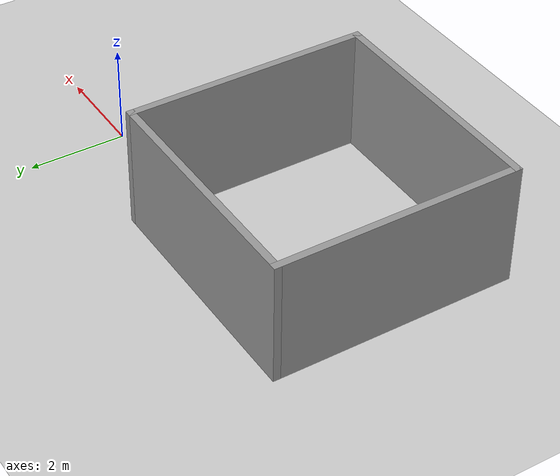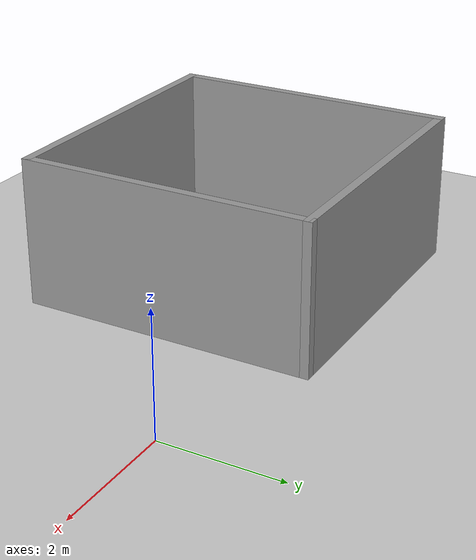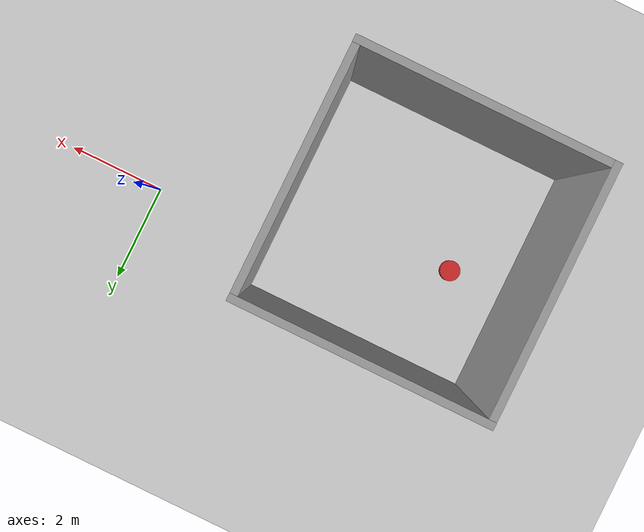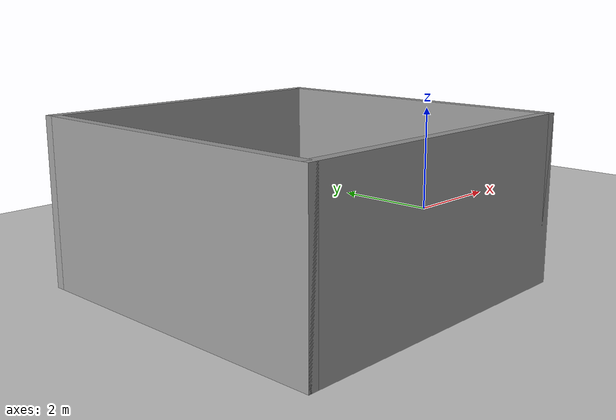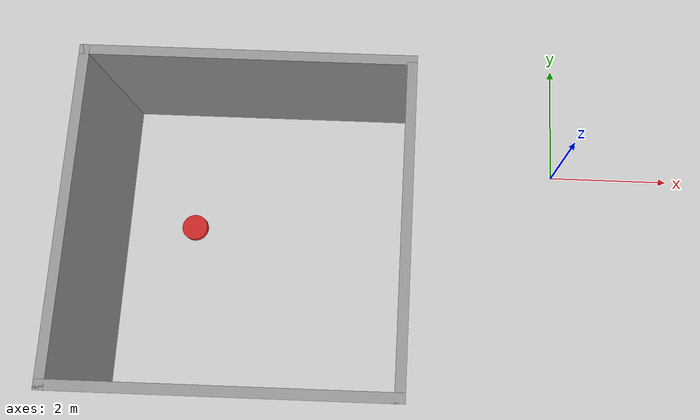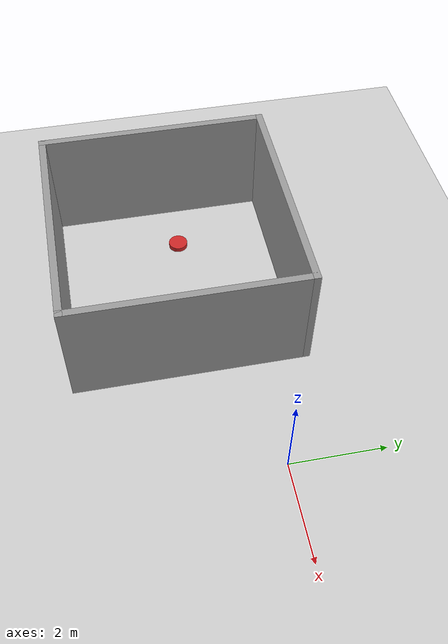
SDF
<sdf version="1.7">
 <world name="default">
  <scene><ambient>0.4 0.4 0.4 1</ambient><background>0.7 0.7 0.7 1</background><shadows>1</shadows></scene>
  <light name="sun" type="directional">
   <pose>0 0 10 0 -0 0</pose>
   <diffuse>0.8 0.8 0.8 1</diffuse>
   <specular>0.2 0.2 0.2 1</specular>
   <attenuation>
    <range>1000</range>
    <constant>0.9</constant>
    <linear>0.01</linear>
    <quadratic>0.001</quadratic>
   </attenuation>
   <direction>-0.5 0.1 -0.9</direction>
   <spot><inner_angle>0</inner_angle><outer_angle>0</outer_angle><falloff>0</falloff></spot>
  </light>
  <model name="ground_plane">
   <static>1</static>
   <link name="link">
    <collision name="collision">
     <geometry><plane><normal>0 0 1</normal><size>100 100</size></plane></geometry>
     <surface>
      <contact><collide_bitmask>65535</collide_bitmask></contact>
      <friction><ode><mu>100</mu><mu2>50</mu2></ode></friction>
     </surface>
    </collision>
    <visual name="visual">
     <cast_shadows>0</cast_shadows>
     <geometry><plane><normal>0 0 1</normal><size>100 100</size></plane></geometry>
     <material>
      <script><uri>file://media/materials/scripts/gazebo.material</uri><name>Gazebo/Grey</name></script>
     </material>
    </visual>
   </link>
  </model>
  <physics type="ode">
   <real_time_update_rate>1000</real_time_update_rate>
   <max_step_size>0.001</max_step_size>
   <real_time_factor>1</real_time_factor>
   <ode>
    <solver>
     <type>quick</type>
     <iters>150</iters>
     <precon_iters>0</precon_iters>
     <sor>1.4</sor>
     <use_dynamic_moi_rescaling>1</use_dynamic_moi_rescaling>
    </solver>
    <constraints>
     <cfm>1e-05</cfm>
     <erp>0.2</erp>
     <contact_max_correcting_vel>2000</contact_max_correcting_vel>
     <contact_surface_layer>0.01</contact_surface_layer>
    </constraints>
   </ode>
  </physics>
  <gravity>0 0 -9.8</gravity>
  <magnetic_field>6e-06 2.3e-05 -4.2e-05</magnetic_field>
  <atmosphere type="adiabatic"/>
  <spherical_coordinates>
   <surface_model>EARTH_WGS84</surface_model>
   <latitude_deg>0</latitude_deg>
   <longitude_deg>0</longitude_deg>
   <elevation>0</elevation>
   <heading_deg>0</heading_deg>
  </spherical_coordinates>
  <model name="5m_room">
   <pose>-3.50426 -1.1439 0 0 -0 0</pose>
   <link name="Wall_0">
    <collision name="Wall_0_Collision">
     <geometry><box><size>5 0.15 2.5</size></box></geometry>
     <pose>0 0 1.25 0 -0 0</pose>
    </collision>
    <visual name="Wall_0_Visual">
     <pose>0 0 1.25 0 -0 0</pose>
     <geometry><box><size>5 0.15 2.5</size></box></geometry>
     <material>
      <script><uri>file://media/materials/scripts/gazebo.material</uri><name>Gazebo/Grey</name></script>
      <ambient>0.827451 0.843137 0.811765 1</ambient>
     </material>
     <meta><layer>0</layer></meta>
    </visual>
    <pose>-1.4025 2.1575 0 0 -0 3.14159</pose>
   </link>
   <link name="Wall_1">
    <collision name="Wall_1_Collision">
     <geometry><box><size>5 0.15 2.5</size></box></geometry>
     <pose>0 0 1.25 0 -0 0</pose>
    </collision>
    <visual name="Wall_1_Visual">
     <pose>0 0 1.25 0 -0 0</pose>
     <geometry><box><size>5 0.15 2.5</size></box></geometry>
     <material>
      <script><uri>file://media/materials/scripts/gazebo.material</uri><name>Gazebo/Grey</name></script>
      <ambient>0.827451 0.843137 0.811765 1</ambient>
     </material>
     <meta><layer>0</layer></meta>
    </visual>
    <pose>-3.8275 -0.2675 0 0 -0 -1.5708</pose>
   </link>
   <link name="Wall_2">
    <collision name="Wall_2_Collision">
     <geometry><box><size>5 0.15 2.5</size></box></geometry>
     <pose>0 0 1.25 0 -0 0</pose>
    </collision>
    <visual name="Wall_2_Visual">
     <pose>0 0 1.25 0 -0 0</pose>
     <geometry><box><size>5 0.15 2.5</size></box></geometry>
     <material>
      <script><uri>file://media/materials/scripts/gazebo.material</uri><name>Gazebo/Grey</name></script>
      <ambient>0.827451 0.843137 0.811765 1</ambient>
     </material>
     <meta><layer>0</layer></meta>
    </visual>
    <pose>-1.4025 -2.6925 0 0 -0 0</pose>
   </link>
   <link name="Wall_3">
    <collision name="Wall_3_Collision">
     <geometry><box><size>5 0.15 2.5</size></box></geometry>
     <pose>0 0 1.25 0 -0 0</pose>
    </collision>
    <visual name="Wall_3_Visual">
     <pose>0 0 1.25 0 -0 0</pose>
     <geometry><box><size>5 0.15 2.5</size></box></geometry>
     <material>
      <script><uri>file://media/materials/scripts/gazebo.material</uri><name>Gazebo/Grey</name></script>
      <ambient>0.827451 0.843137 0.811765 1</ambient>
     </material>
     <meta><layer>0</layer></meta>
    </visual>
    <pose>1.0225 -0.2675 0 0 -0 1.5708</pose>
   </link>
   <static>1</static>
  </model>
  <model name="unit_cylinder">
   <link name="link">
    <inertial>
     <mass>0.0197504</mass>
     <inertia>
      <ixx>0.00024193</ixx>
      <ixy>0</ixy>
      <ixz>0</ixz>
      <iyy>0.00024193</iyy>
      <iyz>0</iyz>
      <izz>0.00044416</izz>
     </inertia>
    </inertial>
    <pose>-0.113318 -0.674322 -0.436004 0 -0 0</pose>
    <visual name="visual">
     <geometry><cylinder><radius>0.212079</radius><length>0.109812</length></cylinder></geometry>
     <material>
      <script><name>Gazebo/Red</name><uri>file://media/materials/scripts/gazebo.material</uri></script>
      <shader type="pixel"><normal_map>__default__</normal_map></shader>
      <ambient>0.3 0.3 0.3 1</ambient>
      <diffuse>0.7 0.7 0.7 1</diffuse>
      <specular>0.01 0.01 0.01 1</specular>
      <emissive>0 0 0 1</emissive>
     </material>
    </visual>
    <collision name="collision">
     <geometry><cylinder><radius>0.212079</radius><length>0.109812</length></cylinder></geometry>
     <surface>
      <friction>
       <ode><mu>1</mu><mu2>1</mu2><fdir1>0 0 0</fdir1><slip1>0</slip1><slip2>0</slip2></ode>
       <torsional>
        <coefficient>1</coefficient>
        <patch_radius>0</patch_radius>
        <surface_radius>0</surface_radius>
        <use_patch_radius>1</use_patch_radius>
        <ode><slip>0</slip></ode>
       </torsional>
      </friction>
      <bounce><restitution_coefficient>0</restitution_coefficient><threshold>1e+06</threshold></bounce>
      <contact>
       <collide_without_contact>0</collide_without_contact>
       <collide_without_contact_bitmask>1</collide_without_contact_bitmask>
       <collide_bitmask>1</collide_bitmask>
       <ode>
        <soft_cfm>0</soft_cfm>
        <soft_erp>0.2</soft_erp>
        <kp>1e+13</kp>
        <kd>1</kd>
        <max_vel>0.01</max_vel>
        <min_depth>0</min_depth>
       </ode>
       <bullet>
        <split_impulse>1</split_impulse>
        <split_impulse_penetration_threshold>-0.01</split_impulse_penetration_threshold>
        <soft_cfm>0</soft_cfm>
        <soft_erp>0.2</soft_erp>
        <kp>1e+13</kp>
        <kd>1</kd>
       </bullet>
      </contact>
     </surface>
    </collision>
   </link>
   <static>0</static>
   <pose>-5.99885 -0.44064 0.490895 -1.9e-05 -1.9e-05 -0</pose>
  </model>
 </world>
</sdf>
